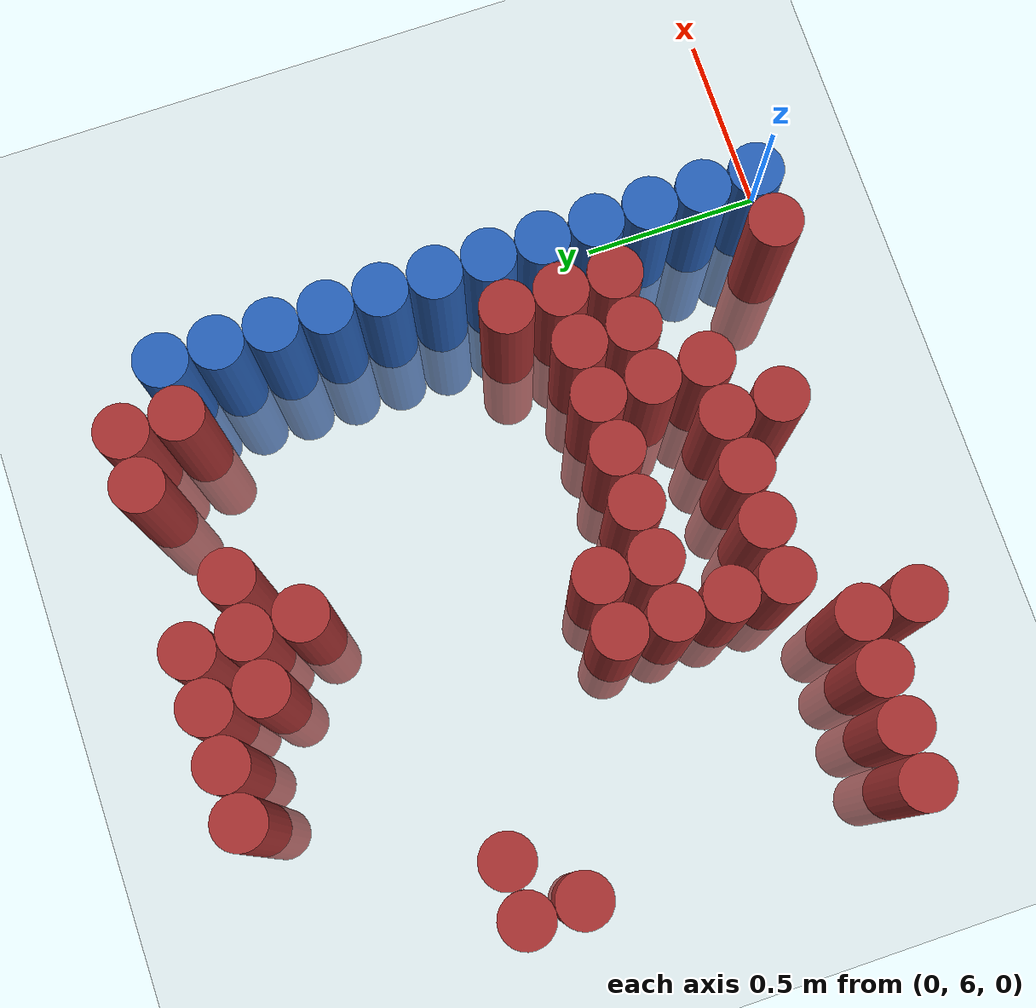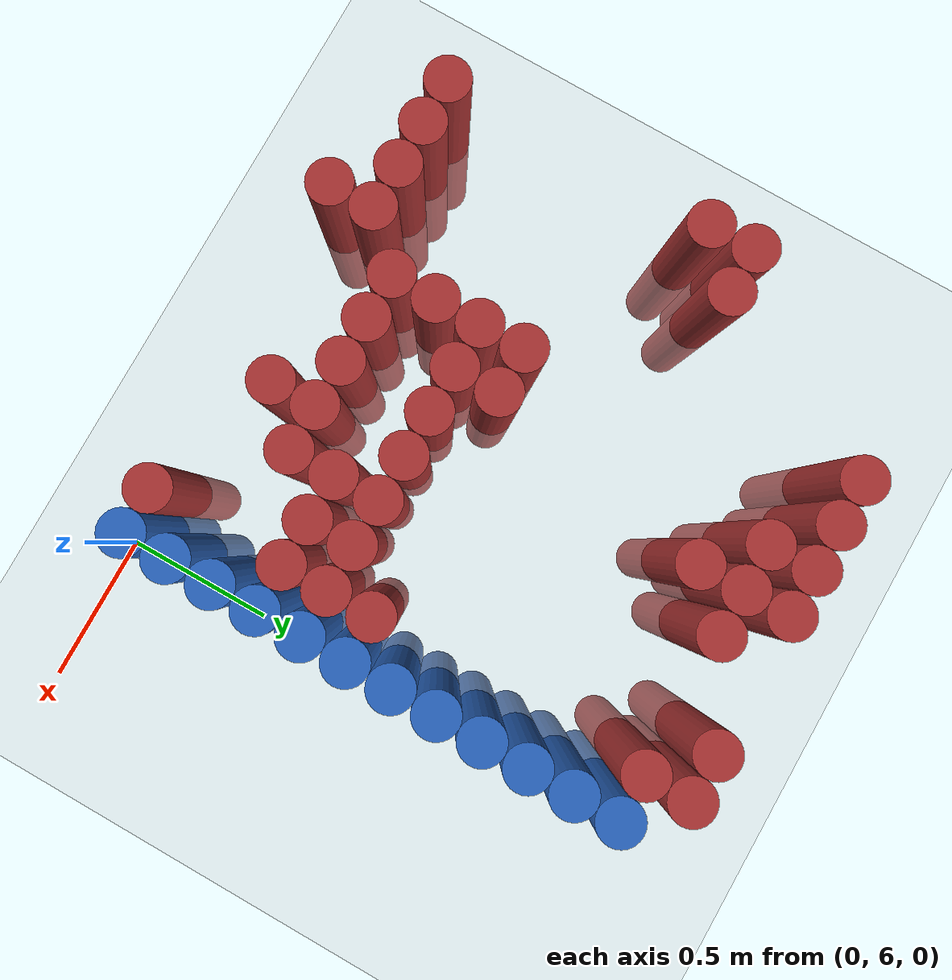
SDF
<sdf version="1.6">
 <world name="default">
  <model name="ground_plane">
   <static>1</static>
   <link name="link">
    <collision name="collision">
     <geometry><plane><normal>0 0 1</normal><size>100 100</size></plane></geometry>
     <surface><friction><ode><mu>100</mu><mu2>50</mu2></ode></friction></surface>
    </collision>
    <visual name="visual">
     <cast_shadows>0</cast_shadows>
     <geometry><plane><normal>0 0 1</normal><size>100 100</size></plane></geometry>
     <material>
      <script><uri>file://media/materials/scripts/gazebo.material</uri><name>Gazebo/Grey</name></script>
     </material>
    </visual>
   </link>
  </model>
  <model name="unit_cylinder_235">
   <static>1</static>
   <pose>-1.725000 6.225000 0.000000 0.000000 0.000000 0.000000</pose>
   <link name="link">
    <inertial>
     <mass>1</mass>
     <inertia><ixx>0.145833</ixx><ixy>0</ixy><ixz>0</ixz><iyy>0.145833</iyy><iyz>0</iyz><izz>0.125</izz></inertia>
    </inertial>
    <collision name="collision">
     <geometry><cylinder><radius>0.075000</radius><length>1</length></cylinder></geometry>
    </collision>
    <visual name="visual">
     <geometry><cylinder><radius>0.075000</radius><length>1</length></cylinder></geometry>
     <material>
      <ambient>0.648000 0.192000 0.192000 1</ambient>
      <diffuse>0.648000 0.192000 0.192000 1</diffuse>
     </material>
     <material>
      <script><name>Gazebo/Grey</name><uri>file://media/materials/scripts/gazebo.material</uri></script>
     </material>
    </visual>
   </link>
  </model>
  <model name="unit_cylinder_236">
   <static>1</static>
   <pose>-1.725000 7.125000 0.000000 0.000000 0.000000 0.000000</pose>
   <link name="link">
    <inertial>
     <mass>1</mass>
     <inertia><ixx>0.145833</ixx><ixy>0</ixy><ixz>0</ixz><iyy>0.145833</iyy><iyz>0</iyz><izz>0.125</izz></inertia>
    </inertial>
    <collision name="collision">
     <geometry><cylinder><radius>0.075000</radius><length>1</length></cylinder></geometry>
    </collision>
    <visual name="visual">
     <geometry><cylinder><radius>0.075000</radius><length>1</length></cylinder></geometry>
     <material>
      <ambient>0.648000 0.192000 0.192000 1</ambient>
      <diffuse>0.648000 0.192000 0.192000 1</diffuse>
     </material>
     <material>
      <script><name>Gazebo/Grey</name><uri>file://media/materials/scripts/gazebo.material</uri></script>
     </material>
    </visual>
   </link>
  </model>
  <model name="unit_cylinder_237">
   <static>1</static>
   <pose>-1.725000 7.275000 0.000000 0.000000 0.000000 0.000000</pose>
   <link name="link">
    <inertial>
     <mass>1</mass>
     <inertia><ixx>0.145833</ixx><ixy>0</ixy><ixz>0</ixz><iyy>0.145833</iyy><iyz>0</iyz><izz>0.125</izz></inertia>
    </inertial>
    <collision name="collision">
     <geometry><cylinder><radius>0.075000</radius><length>1</length></cylinder></geometry>
    </collision>
    <visual name="visual">
     <geometry><cylinder><radius>0.075000</radius><length>1</length></cylinder></geometry>
     <material>
      <ambient>0.648000 0.192000 0.192000 1</ambient>
      <diffuse>0.648000 0.192000 0.192000 1</diffuse>
     </material>
     <material>
      <script><name>Gazebo/Grey</name><uri>file://media/materials/scripts/gazebo.material</uri></script>
     </material>
    </visual>
   </link>
  </model>
  <model name="unit_cylinder_244">
   <static>1</static>
   <pose>-1.575000 6.225000 0.000000 0.000000 0.000000 0.000000</pose>
   <link name="link">
    <inertial>
     <mass>1</mass>
     <inertia><ixx>0.145833</ixx><ixy>0</ixy><ixz>0</ixz><iyy>0.145833</iyy><iyz>0</iyz><izz>0.125</izz></inertia>
    </inertial>
    <collision name="collision">
     <geometry><cylinder><radius>0.075000</radius><length>1</length></cylinder></geometry>
    </collision>
    <visual name="visual">
     <geometry><cylinder><radius>0.075000</radius><length>1</length></cylinder></geometry>
     <material>
      <ambient>0.648000 0.192000 0.192000 1</ambient>
      <diffuse>0.648000 0.192000 0.192000 1</diffuse>
     </material>
     <material>
      <script><name>Gazebo/Grey</name><uri>file://media/materials/scripts/gazebo.material</uri></script>
     </material>
    </visual>
   </link>
  </model>
  <model name="unit_cylinder_245">
   <static>1</static>
   <pose>-1.575000 7.275000 0.000000 0.000000 0.000000 0.000000</pose>
   <link name="link">
    <inertial>
     <mass>1</mass>
     <inertia><ixx>0.145833</ixx><ixy>0</ixy><ixz>0</ixz><iyy>0.145833</iyy><iyz>0</iyz><izz>0.125</izz></inertia>
    </inertial>
    <collision name="collision">
     <geometry><cylinder><radius>0.075000</radius><length>1</length></cylinder></geometry>
    </collision>
    <visual name="visual">
     <geometry><cylinder><radius>0.075000</radius><length>1</length></cylinder></geometry>
     <material>
      <ambient>0.648000 0.192000 0.192000 1</ambient>
      <diffuse>0.648000 0.192000 0.192000 1</diffuse>
     </material>
     <material>
      <script><name>Gazebo/Grey</name><uri>file://media/materials/scripts/gazebo.material</uri></script>
     </material>
    </visual>
   </link>
  </model>
  <model name="unit_cylinder_254">
   <static>1</static>
   <pose>-1.425000 6.225000 0.000000 0.000000 0.000000 0.000000</pose>
   <link name="link">
    <inertial>
     <mass>1</mass>
     <inertia><ixx>0.145833</ixx><ixy>0</ixy><ixz>0</ixz><iyy>0.145833</iyy><iyz>0</iyz><izz>0.125</izz></inertia>
    </inertial>
    <collision name="collision">
     <geometry><cylinder><radius>0.075000</radius><length>1</length></cylinder></geometry>
    </collision>
    <visual name="visual">
     <geometry><cylinder><radius>0.075000</radius><length>1</length></cylinder></geometry>
     <material>
      <ambient>0.648000 0.192000 0.192000 1</ambient>
      <diffuse>0.648000 0.192000 0.192000 1</diffuse>
     </material>
     <material>
      <script><name>Gazebo/Grey</name><uri>file://media/materials/scripts/gazebo.material</uri></script>
     </material>
    </visual>
   </link>
  </model>
  <model name="unit_cylinder_261">
   <static>1</static>
   <pose>-1.275000 6.075000 0.000000 0.000000 0.000000 0.000000</pose>
   <link name="link">
    <inertial>
     <mass>1</mass>
     <inertia><ixx>0.145833</ixx><ixy>0</ixy><ixz>0</ixz><iyy>0.145833</iyy><iyz>0</iyz><izz>0.125</izz></inertia>
    </inertial>
    <collision name="collision">
     <geometry><cylinder><radius>0.075000</radius><length>1</length></cylinder></geometry>
    </collision>
    <visual name="visual">
     <geometry><cylinder><radius>0.075000</radius><length>1</length></cylinder></geometry>
     <material>
      <ambient>0.648000 0.192000 0.192000 1</ambient>
      <diffuse>0.648000 0.192000 0.192000 1</diffuse>
     </material>
     <material>
      <script><name>Gazebo/Grey</name><uri>file://media/materials/scripts/gazebo.material</uri></script>
     </material>
    </visual>
   </link>
  </model>
  <model name="unit_cylinder_262">
   <static>1</static>
   <pose>-1.275000 6.225000 0.000000 0.000000 0.000000 0.000000</pose>
   <link name="link">
    <inertial>
     <mass>1</mass>
     <inertia><ixx>0.145833</ixx><ixy>0</ixy><ixz>0</ixz><iyy>0.145833</iyy><iyz>0</iyz><izz>0.125</izz></inertia>
    </inertial>
    <collision name="collision">
     <geometry><cylinder><radius>0.075000</radius><length>1</length></cylinder></geometry>
    </collision>
    <visual name="visual">
     <geometry><cylinder><radius>0.075000</radius><length>1</length></cylinder></geometry>
     <material>
      <ambient>0.648000 0.192000 0.192000 1</ambient>
      <diffuse>0.648000 0.192000 0.192000 1</diffuse>
     </material>
     <material>
      <script><name>Gazebo/Grey</name><uri>file://media/materials/scripts/gazebo.material</uri></script>
     </material>
    </visual>
   </link>
  </model>
  <model name="unit_cylinder_263">
   <static>1</static>
   <pose>-1.275000 7.875000 0.000000 0.000000 0.000000 0.000000</pose>
   <link name="link">
    <inertial>
     <mass>1</mass>
     <inertia><ixx>0.145833</ixx><ixy>0</ixy><ixz>0</ixz><iyy>0.145833</iyy><iyz>0</iyz><izz>0.125</izz></inertia>
    </inertial>
    <collision name="collision">
     <geometry><cylinder><radius>0.075000</radius><length>1</length></cylinder></geometry>
    </collision>
    <visual name="visual">
     <geometry><cylinder><radius>0.075000</radius><length>1</length></cylinder></geometry>
     <material>
      <ambient>0.648000 0.192000 0.192000 1</ambient>
      <diffuse>0.648000 0.192000 0.192000 1</diffuse>
     </material>
     <material>
      <script><name>Gazebo/Grey</name><uri>file://media/materials/scripts/gazebo.material</uri></script>
     </material>
    </visual>
   </link>
  </model>
  <model name="unit_cylinder_271">
   <static>1</static>
   <pose>-1.125000 6.375000 0.000000 0.000000 0.000000 0.000000</pose>
   <link name="link">
    <inertial>
     <mass>1</mass>
     <inertia><ixx>0.145833</ixx><ixy>0</ixy><ixz>0</ixz><iyy>0.145833</iyy><iyz>0</iyz><izz>0.125</izz></inertia>
    </inertial>
    <collision name="collision">
     <geometry><cylinder><radius>0.075000</radius><length>1</length></cylinder></geometry>
    </collision>
    <visual name="visual">
     <geometry><cylinder><radius>0.075000</radius><length>1</length></cylinder></geometry>
     <material>
      <ambient>0.648000 0.192000 0.192000 1</ambient>
      <diffuse>0.648000 0.192000 0.192000 1</diffuse>
     </material>
     <material>
      <script><name>Gazebo/Grey</name><uri>file://media/materials/scripts/gazebo.material</uri></script>
     </material>
    </visual>
   </link>
  </model>
  <model name="unit_cylinder_272">
   <static>1</static>
   <pose>-1.125000 6.525000 0.000000 0.000000 0.000000 0.000000</pose>
   <link name="link">
    <inertial>
     <mass>1</mass>
     <inertia><ixx>0.145833</ixx><ixy>0</ixy><ixz>0</ixz><iyy>0.145833</iyy><iyz>0</iyz><izz>0.125</izz></inertia>
    </inertial>
    <collision name="collision">
     <geometry><cylinder><radius>0.075000</radius><length>1</length></cylinder></geometry>
    </collision>
    <visual name="visual">
     <geometry><cylinder><radius>0.075000</radius><length>1</length></cylinder></geometry>
     <material>
      <ambient>0.648000 0.192000 0.192000 1</ambient>
      <diffuse>0.648000 0.192000 0.192000 1</diffuse>
     </material>
     <material>
      <script><name>Gazebo/Grey</name><uri>file://media/materials/scripts/gazebo.material</uri></script>
     </material>
    </visual>
   </link>
  </model>
  <model name="unit_cylinder_273">
   <static>1</static>
   <pose>-1.125000 6.675000 0.000000 0.000000 0.000000 0.000000</pose>
   <link name="link">
    <inertial>
     <mass>1</mass>
     <inertia><ixx>0.145833</ixx><ixy>0</ixy><ixz>0</ixz><iyy>0.145833</iyy><iyz>0</iyz><izz>0.125</izz></inertia>
    </inertial>
    <collision name="collision">
     <geometry><cylinder><radius>0.075000</radius><length>1</length></cylinder></geometry>
    </collision>
    <visual name="visual">
     <geometry><cylinder><radius>0.075000</radius><length>1</length></cylinder></geometry>
     <material>
      <ambient>0.648000 0.192000 0.192000 1</ambient>
      <diffuse>0.648000 0.192000 0.192000 1</diffuse>
     </material>
     <material>
      <script><name>Gazebo/Grey</name><uri>file://media/materials/scripts/gazebo.material</uri></script>
     </material>
    </visual>
   </link>
  </model>
  <model name="unit_cylinder_274">
   <static>1</static>
   <pose>-1.125000 6.825000 0.000000 0.000000 0.000000 0.000000</pose>
   <link name="link">
    <inertial>
     <mass>1</mass>
     <inertia><ixx>0.145833</ixx><ixy>0</ixy><ixz>0</ixz><iyy>0.145833</iyy><iyz>0</iyz><izz>0.125</izz></inertia>
    </inertial>
    <collision name="collision">
     <geometry><cylinder><radius>0.075000</radius><length>1</length></cylinder></geometry>
    </collision>
    <visual name="visual">
     <geometry><cylinder><radius>0.075000</radius><length>1</length></cylinder></geometry>
     <material>
      <ambient>0.648000 0.192000 0.192000 1</ambient>
      <diffuse>0.648000 0.192000 0.192000 1</diffuse>
     </material>
     <material>
      <script><name>Gazebo/Grey</name><uri>file://media/materials/scripts/gazebo.material</uri></script>
     </material>
    </visual>
   </link>
  </model>
  <model name="unit_cylinder_275">
   <static>1</static>
   <pose>-1.125000 7.875000 0.000000 0.000000 0.000000 0.000000</pose>
   <link name="link">
    <inertial>
     <mass>1</mass>
     <inertia><ixx>0.145833</ixx><ixy>0</ixy><ixz>0</ixz><iyy>0.145833</iyy><iyz>0</iyz><izz>0.125</izz></inertia>
    </inertial>
    <collision name="collision">
     <geometry><cylinder><radius>0.075000</radius><length>1</length></cylinder></geometry>
    </collision>
    <visual name="visual">
     <geometry><cylinder><radius>0.075000</radius><length>1</length></cylinder></geometry>
     <material>
      <ambient>0.648000 0.192000 0.192000 1</ambient>
      <diffuse>0.648000 0.192000 0.192000 1</diffuse>
     </material>
     <material>
      <script><name>Gazebo/Grey</name><uri>file://media/materials/scripts/gazebo.material</uri></script>
     </material>
    </visual>
   </link>
  </model>
  <model name="unit_cylinder_284">
   <static>1</static>
   <pose>-0.975000 6.375000 0.000000 0.000000 0.000000 0.000000</pose>
   <link name="link">
    <inertial>
     <mass>1</mass>
     <inertia><ixx>0.145833</ixx><ixy>0</ixy><ixz>0</ixz><iyy>0.145833</iyy><iyz>0</iyz><izz>0.125</izz></inertia>
    </inertial>
    <collision name="collision">
     <geometry><cylinder><radius>0.075000</radius><length>1</length></cylinder></geometry>
    </collision>
    <visual name="visual">
     <geometry><cylinder><radius>0.075000</radius><length>1</length></cylinder></geometry>
     <material>
      <ambient>0.648000 0.192000 0.192000 1</ambient>
      <diffuse>0.648000 0.192000 0.192000 1</diffuse>
     </material>
     <material>
      <script><name>Gazebo/Grey</name><uri>file://media/materials/scripts/gazebo.material</uri></script>
     </material>
    </visual>
   </link>
  </model>
  <model name="unit_cylinder_285">
   <static>1</static>
   <pose>-0.975000 6.675000 0.000000 0.000000 0.000000 0.000000</pose>
   <link name="link">
    <inertial>
     <mass>1</mass>
     <inertia><ixx>0.145833</ixx><ixy>0</ixy><ixz>0</ixz><iyy>0.145833</iyy><iyz>0</iyz><izz>0.125</izz></inertia>
    </inertial>
    <collision name="collision">
     <geometry><cylinder><radius>0.075000</radius><length>1</length></cylinder></geometry>
    </collision>
    <visual name="visual">
     <geometry><cylinder><radius>0.075000</radius><length>1</length></cylinder></geometry>
     <material>
      <ambient>0.648000 0.192000 0.192000 1</ambient>
      <diffuse>0.648000 0.192000 0.192000 1</diffuse>
     </material>
     <material>
      <script><name>Gazebo/Grey</name><uri>file://media/materials/scripts/gazebo.material</uri></script>
     </material>
    </visual>
   </link>
  </model>
  <model name="unit_cylinder_286">
   <static>1</static>
   <pose>-0.975000 6.825000 0.000000 0.000000 0.000000 0.000000</pose>
   <link name="link">
    <inertial>
     <mass>1</mass>
     <inertia><ixx>0.145833</ixx><ixy>0</ixy><ixz>0</ixz><iyy>0.145833</iyy><iyz>0</iyz><izz>0.125</izz></inertia>
    </inertial>
    <collision name="collision">
     <geometry><cylinder><radius>0.075000</radius><length>1</length></cylinder></geometry>
    </collision>
    <visual name="visual">
     <geometry><cylinder><radius>0.075000</radius><length>1</length></cylinder></geometry>
     <material>
      <ambient>0.648000 0.192000 0.192000 1</ambient>
      <diffuse>0.648000 0.192000 0.192000 1</diffuse>
     </material>
     <material>
      <script><name>Gazebo/Grey</name><uri>file://media/materials/scripts/gazebo.material</uri></script>
     </material>
    </visual>
   </link>
  </model>
  <model name="unit_cylinder_287">
   <static>1</static>
   <pose>-0.975000 7.725000 0.000000 0.000000 0.000000 0.000000</pose>
   <link name="link">
    <inertial>
     <mass>1</mass>
     <inertia><ixx>0.145833</ixx><ixy>0</ixy><ixz>0</ixz><iyy>0.145833</iyy><iyz>0</iyz><izz>0.125</izz></inertia>
    </inertial>
    <collision name="collision">
     <geometry><cylinder><radius>0.075000</radius><length>1</length></cylinder></geometry>
    </collision>
    <visual name="visual">
     <geometry><cylinder><radius>0.075000</radius><length>1</length></cylinder></geometry>
     <material>
      <ambient>0.648000 0.192000 0.192000 1</ambient>
      <diffuse>0.648000 0.192000 0.192000 1</diffuse>
     </material>
     <material>
      <script><name>Gazebo/Grey</name><uri>file://media/materials/scripts/gazebo.material</uri></script>
     </material>
    </visual>
   </link>
  </model>
  <model name="unit_cylinder_288">
   <static>1</static>
   <pose>-0.975000 7.875000 0.000000 0.000000 0.000000 0.000000</pose>
   <link name="link">
    <inertial>
     <mass>1</mass>
     <inertia><ixx>0.145833</ixx><ixy>0</ixy><ixz>0</ixz><iyy>0.145833</iyy><iyz>0</iyz><izz>0.125</izz></inertia>
    </inertial>
    <collision name="collision">
     <geometry><cylinder><radius>0.075000</radius><length>1</length></cylinder></geometry>
    </collision>
    <visual name="visual">
     <geometry><cylinder><radius>0.075000</radius><length>1</length></cylinder></geometry>
     <material>
      <ambient>0.648000 0.192000 0.192000 1</ambient>
      <diffuse>0.648000 0.192000 0.192000 1</diffuse>
     </material>
     <material>
      <script><name>Gazebo/Grey</name><uri>file://media/materials/scripts/gazebo.material</uri></script>
     </material>
    </visual>
   </link>
  </model>
  <model name="unit_cylinder_294">
   <static>1</static>
   <pose>-0.825000 6.375000 0.000000 0.000000 0.000000 0.000000</pose>
   <link name="link">
    <inertial>
     <mass>1</mass>
     <inertia><ixx>0.145833</ixx><ixy>0</ixy><ixz>0</ixz><iyy>0.145833</iyy><iyz>0</iyz><izz>0.125</izz></inertia>
    </inertial>
    <collision name="collision">
     <geometry><cylinder><radius>0.075000</radius><length>1</length></cylinder></geometry>
    </collision>
    <visual name="visual">
     <geometry><cylinder><radius>0.075000</radius><length>1</length></cylinder></geometry>
     <material>
      <ambient>0.648000 0.192000 0.192000 1</ambient>
      <diffuse>0.648000 0.192000 0.192000 1</diffuse>
     </material>
     <material>
      <script><name>Gazebo/Grey</name><uri>file://media/materials/scripts/gazebo.material</uri></script>
     </material>
    </visual>
   </link>
  </model>
  <model name="unit_cylinder_295">
   <static>1</static>
   <pose>-0.825000 6.675000 0.000000 0.000000 0.000000 0.000000</pose>
   <link name="link">
    <inertial>
     <mass>1</mass>
     <inertia><ixx>0.145833</ixx><ixy>0</ixy><ixz>0</ixz><iyy>0.145833</iyy><iyz>0</iyz><izz>0.125</izz></inertia>
    </inertial>
    <collision name="collision">
     <geometry><cylinder><radius>0.075000</radius><length>1</length></cylinder></geometry>
    </collision>
    <visual name="visual">
     <geometry><cylinder><radius>0.075000</radius><length>1</length></cylinder></geometry>
     <material>
      <ambient>0.648000 0.192000 0.192000 1</ambient>
      <diffuse>0.648000 0.192000 0.192000 1</diffuse>
     </material>
     <material>
      <script><name>Gazebo/Grey</name><uri>file://media/materials/scripts/gazebo.material</uri></script>
     </material>
    </visual>
   </link>
  </model>
  <model name="unit_cylinder_296">
   <static>1</static>
   <pose>-0.825000 7.575000 0.000000 0.000000 0.000000 0.000000</pose>
   <link name="link">
    <inertial>
     <mass>1</mass>
     <inertia><ixx>0.145833</ixx><ixy>0</ixy><ixz>0</ixz><iyy>0.145833</iyy><iyz>0</iyz><izz>0.125</izz></inertia>
    </inertial>
    <collision name="collision">
     <geometry><cylinder><radius>0.075000</radius><length>1</length></cylinder></geometry>
    </collision>
    <visual name="visual">
     <geometry><cylinder><radius>0.075000</radius><length>1</length></cylinder></geometry>
     <material>
      <ambient>0.648000 0.192000 0.192000 1</ambient>
      <diffuse>0.648000 0.192000 0.192000 1</diffuse>
     </material>
     <material>
      <script><name>Gazebo/Grey</name><uri>file://media/materials/scripts/gazebo.material</uri></script>
     </material>
    </visual>
   </link>
  </model>
  <model name="unit_cylinder_297">
   <static>1</static>
   <pose>-0.825000 7.725000 0.000000 0.000000 0.000000 0.000000</pose>
   <link name="link">
    <inertial>
     <mass>1</mass>
     <inertia><ixx>0.145833</ixx><ixy>0</ixy><ixz>0</ixz><iyy>0.145833</iyy><iyz>0</iyz><izz>0.125</izz></inertia>
    </inertial>
    <collision name="collision">
     <geometry><cylinder><radius>0.075000</radius><length>1</length></cylinder></geometry>
    </collision>
    <visual name="visual">
     <geometry><cylinder><radius>0.075000</radius><length>1</length></cylinder></geometry>
     <material>
      <ambient>0.648000 0.192000 0.192000 1</ambient>
      <diffuse>0.648000 0.192000 0.192000 1</diffuse>
     </material>
     <material>
      <script><name>Gazebo/Grey</name><uri>file://media/materials/scripts/gazebo.material</uri></script>
     </material>
    </visual>
   </link>
  </model>
  <model name="unit_cylinder_298">
   <static>1</static>
   <pose>-0.825000 7.875000 0.000000 0.000000 0.000000 0.000000</pose>
   <link name="link">
    <inertial>
     <mass>1</mass>
     <inertia><ixx>0.145833</ixx><ixy>0</ixy><ixz>0</ixz><iyy>0.145833</iyy><iyz>0</iyz><izz>0.125</izz></inertia>
    </inertial>
    <collision name="collision">
     <geometry><cylinder><radius>0.075000</radius><length>1</length></cylinder></geometry>
    </collision>
    <visual name="visual">
     <geometry><cylinder><radius>0.075000</radius><length>1</length></cylinder></geometry>
     <material>
      <ambient>0.648000 0.192000 0.192000 1</ambient>
      <diffuse>0.648000 0.192000 0.192000 1</diffuse>
     </material>
     <material>
      <script><name>Gazebo/Grey</name><uri>file://media/materials/scripts/gazebo.material</uri></script>
     </material>
    </visual>
   </link>
  </model>
  <model name="unit_cylinder_302">
   <static>1</static>
   <pose>-0.675000 6.225000 0.000000 0.000000 0.000000 0.000000</pose>
   <link name="link">
    <inertial>
     <mass>1</mass>
     <inertia><ixx>0.145833</ixx><ixy>0</ixy><ixz>0</ixz><iyy>0.145833</iyy><iyz>0</iyz><izz>0.125</izz></inertia>
    </inertial>
    <collision name="collision">
     <geometry><cylinder><radius>0.075000</radius><length>1</length></cylinder></geometry>
    </collision>
    <visual name="visual">
     <geometry><cylinder><radius>0.075000</radius><length>1</length></cylinder></geometry>
     <material>
      <ambient>0.648000 0.192000 0.192000 1</ambient>
      <diffuse>0.648000 0.192000 0.192000 1</diffuse>
     </material>
     <material>
      <script><name>Gazebo/Grey</name><uri>file://media/materials/scripts/gazebo.material</uri></script>
     </material>
    </visual>
   </link>
  </model>
  <model name="unit_cylinder_303">
   <static>1</static>
   <pose>-0.675000 6.375000 0.000000 0.000000 0.000000 0.000000</pose>
   <link name="link">
    <inertial>
     <mass>1</mass>
     <inertia><ixx>0.145833</ixx><ixy>0</ixy><ixz>0</ixz><iyy>0.145833</iyy><iyz>0</iyz><izz>0.125</izz></inertia>
    </inertial>
    <collision name="collision">
     <geometry><cylinder><radius>0.075000</radius><length>1</length></cylinder></geometry>
    </collision>
    <visual name="visual">
     <geometry><cylinder><radius>0.075000</radius><length>1</length></cylinder></geometry>
     <material>
      <ambient>0.648000 0.192000 0.192000 1</ambient>
      <diffuse>0.648000 0.192000 0.192000 1</diffuse>
     </material>
     <material>
      <script><name>Gazebo/Grey</name><uri>file://media/materials/scripts/gazebo.material</uri></script>
     </material>
    </visual>
   </link>
  </model>
  <model name="unit_cylinder_304">
   <static>1</static>
   <pose>-0.675000 6.675000 0.000000 0.000000 0.000000 0.000000</pose>
   <link name="link">
    <inertial>
     <mass>1</mass>
     <inertia><ixx>0.145833</ixx><ixy>0</ixy><ixz>0</ixz><iyy>0.145833</iyy><iyz>0</iyz><izz>0.125</izz></inertia>
    </inertial>
    <collision name="collision">
     <geometry><cylinder><radius>0.075000</radius><length>1</length></cylinder></geometry>
    </collision>
    <visual name="visual">
     <geometry><cylinder><radius>0.075000</radius><length>1</length></cylinder></geometry>
     <material>
      <ambient>0.648000 0.192000 0.192000 1</ambient>
      <diffuse>0.648000 0.192000 0.192000 1</diffuse>
     </material>
     <material>
      <script><name>Gazebo/Grey</name><uri>file://media/materials/scripts/gazebo.material</uri></script>
     </material>
    </visual>
   </link>
  </model>
  <model name="unit_cylinder_305">
   <static>1</static>
   <pose>-0.675000 7.725000 0.000000 0.000000 0.000000 0.000000</pose>
   <link name="link">
    <inertial>
     <mass>1</mass>
     <inertia><ixx>0.145833</ixx><ixy>0</ixy><ixz>0</ixz><iyy>0.145833</iyy><iyz>0</iyz><izz>0.125</izz></inertia>
    </inertial>
    <collision name="collision">
     <geometry><cylinder><radius>0.075000</radius><length>1</length></cylinder></geometry>
    </collision>
    <visual name="visual">
     <geometry><cylinder><radius>0.075000</radius><length>1</length></cylinder></geometry>
     <material>
      <ambient>0.648000 0.192000 0.192000 1</ambient>
      <diffuse>0.648000 0.192000 0.192000 1</diffuse>
     </material>
     <material>
      <script><name>Gazebo/Grey</name><uri>file://media/materials/scripts/gazebo.material</uri></script>
     </material>
    </visual>
   </link>
  </model>
  <model name="unit_cylinder_310">
   <static>1</static>
   <pose>-0.525000 6.375000 0.000000 0.000000 0.000000 0.000000</pose>
   <link name="link">
    <inertial>
     <mass>1</mass>
     <inertia><ixx>0.145833</ixx><ixy>0</ixy><ixz>0</ixz><iyy>0.145833</iyy><iyz>0</iyz><izz>0.125</izz></inertia>
    </inertial>
    <collision name="collision">
     <geometry><cylinder><radius>0.075000</radius><length>1</length></cylinder></geometry>
    </collision>
    <visual name="visual">
     <geometry><cylinder><radius>0.075000</radius><length>1</length></cylinder></geometry>
     <material>
      <ambient>0.648000 0.192000 0.192000 1</ambient>
      <diffuse>0.648000 0.192000 0.192000 1</diffuse>
     </material>
     <material>
      <script><name>Gazebo/Grey</name><uri>file://media/materials/scripts/gazebo.material</uri></script>
     </material>
    </visual>
   </link>
  </model>
  <model name="unit_cylinder_311">
   <static>1</static>
   <pose>-0.525000 6.525000 0.000000 0.000000 0.000000 0.000000</pose>
   <link name="link">
    <inertial>
     <mass>1</mass>
     <inertia><ixx>0.145833</ixx><ixy>0</ixy><ixz>0</ixz><iyy>0.145833</iyy><iyz>0</iyz><izz>0.125</izz></inertia>
    </inertial>
    <collision name="collision">
     <geometry><cylinder><radius>0.075000</radius><length>1</length></cylinder></geometry>
    </collision>
    <visual name="visual">
     <geometry><cylinder><radius>0.075000</radius><length>1</length></cylinder></geometry>
     <material>
      <ambient>0.648000 0.192000 0.192000 1</ambient>
      <diffuse>0.648000 0.192000 0.192000 1</diffuse>
     </material>
     <material>
      <script><name>Gazebo/Grey</name><uri>file://media/materials/scripts/gazebo.material</uri></script>
     </material>
    </visual>
   </link>
  </model>
  <model name="unit_cylinder_312">
   <static>1</static>
   <pose>-0.525000 6.675000 0.000000 0.000000 0.000000 0.000000</pose>
   <link name="link">
    <inertial>
     <mass>1</mass>
     <inertia><ixx>0.145833</ixx><ixy>0</ixy><ixz>0</ixz><iyy>0.145833</iyy><iyz>0</iyz><izz>0.125</izz></inertia>
    </inertial>
    <collision name="collision">
     <geometry><cylinder><radius>0.075000</radius><length>1</length></cylinder></geometry>
    </collision>
    <visual name="visual">
     <geometry><cylinder><radius>0.075000</radius><length>1</length></cylinder></geometry>
     <material>
      <ambient>0.648000 0.192000 0.192000 1</ambient>
      <diffuse>0.648000 0.192000 0.192000 1</diffuse>
     </material>
     <material>
      <script><name>Gazebo/Grey</name><uri>file://media/materials/scripts/gazebo.material</uri></script>
     </material>
    </visual>
   </link>
  </model>
  <model name="unit_cylinder_320">
   <static>1</static>
   <pose>-0.375000 6.525000 0.000000 0.000000 0.000000 0.000000</pose>
   <link name="link">
    <inertial>
     <mass>1</mass>
     <inertia><ixx>0.145833</ixx><ixy>0</ixy><ixz>0</ixz><iyy>0.145833</iyy><iyz>0</iyz><izz>0.125</izz></inertia>
    </inertial>
    <collision name="collision">
     <geometry><cylinder><radius>0.075000</radius><length>1</length></cylinder></geometry>
    </collision>
    <visual name="visual">
     <geometry><cylinder><radius>0.075000</radius><length>1</length></cylinder></geometry>
     <material>
      <ambient>0.648000 0.192000 0.192000 1</ambient>
      <diffuse>0.648000 0.192000 0.192000 1</diffuse>
     </material>
     <material>
      <script><name>Gazebo/Grey</name><uri>file://media/materials/scripts/gazebo.material</uri></script>
     </material>
    </visual>
   </link>
  </model>
  <model name="unit_cylinder_321">
   <static>1</static>
   <pose>-0.375000 6.675000 0.000000 0.000000 0.000000 0.000000</pose>
   <link name="link">
    <inertial>
     <mass>1</mass>
     <inertia><ixx>0.145833</ixx><ixy>0</ixy><ixz>0</ixz><iyy>0.145833</iyy><iyz>0</iyz><izz>0.125</izz></inertia>
    </inertial>
    <collision name="collision">
     <geometry><cylinder><radius>0.075000</radius><length>1</length></cylinder></geometry>
    </collision>
    <visual name="visual">
     <geometry><cylinder><radius>0.075000</radius><length>1</length></cylinder></geometry>
     <material>
      <ambient>0.648000 0.192000 0.192000 1</ambient>
      <diffuse>0.648000 0.192000 0.192000 1</diffuse>
     </material>
     <material>
      <script><name>Gazebo/Grey</name><uri>file://media/materials/scripts/gazebo.material</uri></script>
     </material>
    </visual>
   </link>
  </model>
  <model name="unit_cylinder_322">
   <static>1</static>
   <pose>-0.375000 7.875000 0.000000 0.000000 0.000000 0.000000</pose>
   <link name="link">
    <inertial>
     <mass>1</mass>
     <inertia><ixx>0.145833</ixx><ixy>0</ixy><ixz>0</ixz><iyy>0.145833</iyy><iyz>0</iyz><izz>0.125</izz></inertia>
    </inertial>
    <collision name="collision">
     <geometry><cylinder><radius>0.075000</radius><length>1</length></cylinder></geometry>
    </collision>
    <visual name="visual">
     <geometry><cylinder><radius>0.075000</radius><length>1</length></cylinder></geometry>
     <material>
      <ambient>0.648000 0.192000 0.192000 1</ambient>
      <diffuse>0.648000 0.192000 0.192000 1</diffuse>
     </material>
     <material>
      <script><name>Gazebo/Grey</name><uri>file://media/materials/scripts/gazebo.material</uri></script>
     </material>
    </visual>
   </link>
  </model>
  <model name="unit_cylinder_328">
   <static>1</static>
   <pose>-0.225000 6.075000 0.000000 0.000000 0.000000 0.000000</pose>
   <link name="link">
    <inertial>
     <mass>1</mass>
     <inertia><ixx>0.145833</ixx><ixy>0</ixy><ixz>0</ixz><iyy>0.145833</iyy><iyz>0</iyz><izz>0.125</izz></inertia>
    </inertial>
    <collision name="collision">
     <geometry><cylinder><radius>0.075000</radius><length>1</length></cylinder></geometry>
    </collision>
    <visual name="visual">
     <geometry><cylinder><radius>0.075000</radius><length>1</length></cylinder></geometry>
     <material>
      <ambient>0.648000 0.192000 0.192000 1</ambient>
      <diffuse>0.648000 0.192000 0.192000 1</diffuse>
     </material>
     <material>
      <script><name>Gazebo/Grey</name><uri>file://media/materials/scripts/gazebo.material</uri></script>
     </material>
    </visual>
   </link>
  </model>
  <model name="unit_cylinder_329">
   <static>1</static>
   <pose>-0.225000 6.525000 0.000000 0.000000 0.000000 0.000000</pose>
   <link name="link">
    <inertial>
     <mass>1</mass>
     <inertia><ixx>0.145833</ixx><ixy>0</ixy><ixz>0</ixz><iyy>0.145833</iyy><iyz>0</iyz><izz>0.125</izz></inertia>
    </inertial>
    <collision name="collision">
     <geometry><cylinder><radius>0.075000</radius><length>1</length></cylinder></geometry>
    </collision>
    <visual name="visual">
     <geometry><cylinder><radius>0.075000</radius><length>1</length></cylinder></geometry>
     <material>
      <ambient>0.648000 0.192000 0.192000 1</ambient>
      <diffuse>0.648000 0.192000 0.192000 1</diffuse>
     </material>
     <material>
      <script><name>Gazebo/Grey</name><uri>file://media/materials/scripts/gazebo.material</uri></script>
     </material>
    </visual>
   </link>
  </model>
  <model name="unit_cylinder_330">
   <static>1</static>
   <pose>-0.225000 6.675000 0.000000 0.000000 0.000000 0.000000</pose>
   <link name="link">
    <inertial>
     <mass>1</mass>
     <inertia><ixx>0.145833</ixx><ixy>0</ixy><ixz>0</ixz><iyy>0.145833</iyy><iyz>0</iyz><izz>0.125</izz></inertia>
    </inertial>
    <collision name="collision">
     <geometry><cylinder><radius>0.075000</radius><length>1</length></cylinder></geometry>
    </collision>
    <visual name="visual">
     <geometry><cylinder><radius>0.075000</radius><length>1</length></cylinder></geometry>
     <material>
      <ambient>0.648000 0.192000 0.192000 1</ambient>
      <diffuse>0.648000 0.192000 0.192000 1</diffuse>
     </material>
     <material>
      <script><name>Gazebo/Grey</name><uri>file://media/materials/scripts/gazebo.material</uri></script>
     </material>
    </visual>
   </link>
  </model>
  <model name="unit_cylinder_331">
   <static>1</static>
   <pose>-0.225000 6.825000 0.000000 0.000000 0.000000 0.000000</pose>
   <link name="link">
    <inertial>
     <mass>1</mass>
     <inertia><ixx>0.145833</ixx><ixy>0</ixy><ixz>0</ixz><iyy>0.145833</iyy><iyz>0</iyz><izz>0.125</izz></inertia>
    </inertial>
    <collision name="collision">
     <geometry><cylinder><radius>0.075000</radius><length>1</length></cylinder></geometry>
    </collision>
    <visual name="visual">
     <geometry><cylinder><radius>0.075000</radius><length>1</length></cylinder></geometry>
     <material>
      <ambient>0.648000 0.192000 0.192000 1</ambient>
      <diffuse>0.648000 0.192000 0.192000 1</diffuse>
     </material>
     <material>
      <script><name>Gazebo/Grey</name><uri>file://media/materials/scripts/gazebo.material</uri></script>
     </material>
    </visual>
   </link>
  </model>
  <model name="unit_cylinder_332">
   <static>1</static>
   <pose>-0.225000 7.725000 0.000000 0.000000 0.000000 0.000000</pose>
   <link name="link">
    <inertial>
     <mass>1</mass>
     <inertia><ixx>0.145833</ixx><ixy>0</ixy><ixz>0</ixz><iyy>0.145833</iyy><iyz>0</iyz><izz>0.125</izz></inertia>
    </inertial>
    <collision name="collision">
     <geometry><cylinder><radius>0.075000</radius><length>1</length></cylinder></geometry>
    </collision>
    <visual name="visual">
     <geometry><cylinder><radius>0.075000</radius><length>1</length></cylinder></geometry>
     <material>
      <ambient>0.648000 0.192000 0.192000 1</ambient>
      <diffuse>0.648000 0.192000 0.192000 1</diffuse>
     </material>
     <material>
      <script><name>Gazebo/Grey</name><uri>file://media/materials/scripts/gazebo.material</uri></script>
     </material>
    </visual>
   </link>
  </model>
  <model name="unit_cylinder_333">
   <static>1</static>
   <pose>-0.225000 7.875000 0.000000 0.000000 0.000000 0.000000</pose>
   <link name="link">
    <inertial>
     <mass>1</mass>
     <inertia><ixx>0.145833</ixx><ixy>0</ixy><ixz>0</ixz><iyy>0.145833</iyy><iyz>0</iyz><izz>0.125</izz></inertia>
    </inertial>
    <collision name="collision">
     <geometry><cylinder><radius>0.075000</radius><length>1</length></cylinder></geometry>
    </collision>
    <visual name="visual">
     <geometry><cylinder><radius>0.075000</radius><length>1</length></cylinder></geometry>
     <material>
      <ambient>0.648000 0.192000 0.192000 1</ambient>
      <diffuse>0.648000 0.192000 0.192000 1</diffuse>
     </material>
     <material>
      <script><name>Gazebo/Grey</name><uri>file://media/materials/scripts/gazebo.material</uri></script>
     </material>
    </visual>
   </link>
  </model>
  <model name="unit_cylinder_342">
   <static>1</static>
   <pose>-0.075000 6.075000 0.000000 0.000000 0.000000 0.000000</pose>
   <link name="link">
    <inertial>
     <mass>1</mass>
     <inertia><ixx>0.145833</ixx><ixy>0</ixy><ixz>0</ixz><iyy>0.145833</iyy><iyz>0</iyz><izz>0.125</izz></inertia>
    </inertial>
    <collision name="collision">
     <geometry><cylinder><radius>0.075000</radius><length>1</length></cylinder></geometry>
    </collision>
    <visual name="visual">
     <geometry><cylinder><radius>0.075000</radius><length>1</length></cylinder></geometry>
     <material>
      <ambient>0.152000 0.379000 0.720000 1</ambient>
      <diffuse>0.152000 0.379000 0.720000 1</diffuse>
     </material>
     <material>
      <script><name>Gazebo/Grey</name><uri>file://media/materials/scripts/gazebo.material</uri></script>
     </material>
    </visual>
   </link>
  </model>
  <model name="unit_cylinder_343">
   <static>1</static>
   <pose>-0.075000 6.225000 0.000000 0.000000 0.000000 0.000000</pose>
   <link name="link">
    <inertial>
     <mass>1</mass>
     <inertia><ixx>0.145833</ixx><ixy>0</ixy><ixz>0</ixz><iyy>0.145833</iyy><iyz>0</iyz><izz>0.125</izz></inertia>
    </inertial>
    <collision name="collision">
     <geometry><cylinder><radius>0.075000</radius><length>1</length></cylinder></geometry>
    </collision>
    <visual name="visual">
     <geometry><cylinder><radius>0.075000</radius><length>1</length></cylinder></geometry>
     <material>
      <ambient>0.152000 0.379000 0.720000 1</ambient>
      <diffuse>0.152000 0.379000 0.720000 1</diffuse>
     </material>
     <material>
      <script><name>Gazebo/Grey</name><uri>file://media/materials/scripts/gazebo.material</uri></script>
     </material>
    </visual>
   </link>
  </model>
  <model name="unit_cylinder_344">
   <static>1</static>
   <pose>-0.075000 6.375000 0.000000 0.000000 0.000000 0.000000</pose>
   <link name="link">
    <inertial>
     <mass>1</mass>
     <inertia><ixx>0.145833</ixx><ixy>0</ixy><ixz>0</ixz><iyy>0.145833</iyy><iyz>0</iyz><izz>0.125</izz></inertia>
    </inertial>
    <collision name="collision">
     <geometry><cylinder><radius>0.075000</radius><length>1</length></cylinder></geometry>
    </collision>
    <visual name="visual">
     <geometry><cylinder><radius>0.075000</radius><length>1</length></cylinder></geometry>
     <material>
      <ambient>0.152000 0.379000 0.720000 1</ambient>
      <diffuse>0.152000 0.379000 0.720000 1</diffuse>
     </material>
     <material>
      <script><name>Gazebo/Grey</name><uri>file://media/materials/scripts/gazebo.material</uri></script>
     </material>
    </visual>
   </link>
  </model>
  <model name="unit_cylinder_345">
   <static>1</static>
   <pose>-0.075000 6.525000 0.000000 0.000000 0.000000 0.000000</pose>
   <link name="link">
    <inertial>
     <mass>1</mass>
     <inertia><ixx>0.145833</ixx><ixy>0</ixy><ixz>0</ixz><iyy>0.145833</iyy><iyz>0</iyz><izz>0.125</izz></inertia>
    </inertial>
    <collision name="collision">
     <geometry><cylinder><radius>0.075000</radius><length>1</length></cylinder></geometry>
    </collision>
    <visual name="visual">
     <geometry><cylinder><radius>0.075000</radius><length>1</length></cylinder></geometry>
     <material>
      <ambient>0.152000 0.379000 0.720000 1</ambient>
      <diffuse>0.152000 0.379000 0.720000 1</diffuse>
     </material>
     <material>
      <script><name>Gazebo/Grey</name><uri>file://media/materials/scripts/gazebo.material</uri></script>
     </material>
    </visual>
   </link>
  </model>
  <model name="unit_cylinder_346">
   <static>1</static>
   <pose>-0.075000 6.675000 0.000000 0.000000 0.000000 0.000000</pose>
   <link name="link">
    <inertial>
     <mass>1</mass>
     <inertia><ixx>0.145833</ixx><ixy>0</ixy><ixz>0</ixz><iyy>0.145833</iyy><iyz>0</iyz><izz>0.125</izz></inertia>
    </inertial>
    <collision name="collision">
     <geometry><cylinder><radius>0.075000</radius><length>1</length></cylinder></geometry>
    </collision>
    <visual name="visual">
     <geometry><cylinder><radius>0.075000</radius><length>1</length></cylinder></geometry>
     <material>
      <ambient>0.152000 0.379000 0.720000 1</ambient>
      <diffuse>0.152000 0.379000 0.720000 1</diffuse>
     </material>
     <material>
      <script><name>Gazebo/Grey</name><uri>file://media/materials/scripts/gazebo.material</uri></script>
     </material>
    </visual>
   </link>
  </model>
  <model name="unit_cylinder_347">
   <static>1</static>
   <pose>-0.075000 6.825000 0.000000 0.000000 0.000000 0.000000</pose>
   <link name="link">
    <inertial>
     <mass>1</mass>
     <inertia><ixx>0.145833</ixx><ixy>0</ixy><ixz>0</ixz><iyy>0.145833</iyy><iyz>0</iyz><izz>0.125</izz></inertia>
    </inertial>
    <collision name="collision">
     <geometry><cylinder><radius>0.075000</radius><length>1</length></cylinder></geometry>
    </collision>
    <visual name="visual">
     <geometry><cylinder><radius>0.075000</radius><length>1</length></cylinder></geometry>
     <material>
      <ambient>0.152000 0.379000 0.720000 1</ambient>
      <diffuse>0.152000 0.379000 0.720000 1</diffuse>
     </material>
     <material>
      <script><name>Gazebo/Grey</name><uri>file://media/materials/scripts/gazebo.material</uri></script>
     </material>
    </visual>
   </link>
  </model>
  <model name="unit_cylinder_348">
   <static>1</static>
   <pose>-0.075000 6.975000 0.000000 0.000000 0.000000 0.000000</pose>
   <link name="link">
    <inertial>
     <mass>1</mass>
     <inertia><ixx>0.145833</ixx><ixy>0</ixy><ixz>0</ixz><iyy>0.145833</iyy><iyz>0</iyz><izz>0.125</izz></inertia>
    </inertial>
    <collision name="collision">
     <geometry><cylinder><radius>0.075000</radius><length>1</length></cylinder></geometry>
    </collision>
    <visual name="visual">
     <geometry><cylinder><radius>0.075000</radius><length>1</length></cylinder></geometry>
     <material>
      <ambient>0.152000 0.379000 0.720000 1</ambient>
      <diffuse>0.152000 0.379000 0.720000 1</diffuse>
     </material>
     <material>
      <script><name>Gazebo/Grey</name><uri>file://media/materials/scripts/gazebo.material</uri></script>
     </material>
    </visual>
   </link>
  </model>
  <model name="unit_cylinder_349">
   <static>1</static>
   <pose>-0.075000 7.125000 0.000000 0.000000 0.000000 0.000000</pose>
   <link name="link">
    <inertial>
     <mass>1</mass>
     <inertia><ixx>0.145833</ixx><ixy>0</ixy><ixz>0</ixz><iyy>0.145833</iyy><iyz>0</iyz><izz>0.125</izz></inertia>
    </inertial>
    <collision name="collision">
     <geometry><cylinder><radius>0.075000</radius><length>1</length></cylinder></geometry>
    </collision>
    <visual name="visual">
     <geometry><cylinder><radius>0.075000</radius><length>1</length></cylinder></geometry>
     <material>
      <ambient>0.152000 0.379000 0.720000 1</ambient>
      <diffuse>0.152000 0.379000 0.720000 1</diffuse>
     </material>
     <material>
      <script><name>Gazebo/Grey</name><uri>file://media/materials/scripts/gazebo.material</uri></script>
     </material>
    </visual>
   </link>
  </model>
  <model name="unit_cylinder_350">
   <static>1</static>
   <pose>-0.075000 7.275000 0.000000 0.000000 0.000000 0.000000</pose>
   <link name="link">
    <inertial>
     <mass>1</mass>
     <inertia><ixx>0.145833</ixx><ixy>0</ixy><ixz>0</ixz><iyy>0.145833</iyy><iyz>0</iyz><izz>0.125</izz></inertia>
    </inertial>
    <collision name="collision">
     <geometry><cylinder><radius>0.075000</radius><length>1</length></cylinder></geometry>
    </collision>
    <visual name="visual">
     <geometry><cylinder><radius>0.075000</radius><length>1</length></cylinder></geometry>
     <material>
      <ambient>0.152000 0.379000 0.720000 1</ambient>
      <diffuse>0.152000 0.379000 0.720000 1</diffuse>
     </material>
     <material>
      <script><name>Gazebo/Grey</name><uri>file://media/materials/scripts/gazebo.material</uri></script>
     </material>
    </visual>
   </link>
  </model>
  <model name="unit_cylinder_351">
   <static>1</static>
   <pose>-0.075000 7.425000 0.000000 0.000000 0.000000 0.000000</pose>
   <link name="link">
    <inertial>
     <mass>1</mass>
     <inertia><ixx>0.145833</ixx><ixy>0</ixy><ixz>0</ixz><iyy>0.145833</iyy><iyz>0</iyz><izz>0.125</izz></inertia>
    </inertial>
    <collision name="collision">
     <geometry><cylinder><radius>0.075000</radius><length>1</length></cylinder></geometry>
    </collision>
    <visual name="visual">
     <geometry><cylinder><radius>0.075000</radius><length>1</length></cylinder></geometry>
     <material>
      <ambient>0.152000 0.379000 0.720000 1</ambient>
      <diffuse>0.152000 0.379000 0.720000 1</diffuse>
     </material>
     <material>
      <script><name>Gazebo/Grey</name><uri>file://media/materials/scripts/gazebo.material</uri></script>
     </material>
    </visual>
   </link>
  </model>
  <model name="unit_cylinder_352">
   <static>1</static>
   <pose>-0.075000 7.575000 0.000000 0.000000 0.000000 0.000000</pose>
   <link name="link">
    <inertial>
     <mass>1</mass>
     <inertia><ixx>0.145833</ixx><ixy>0</ixy><ixz>0</ixz><iyy>0.145833</iyy><iyz>0</iyz><izz>0.125</izz></inertia>
    </inertial>
    <collision name="collision">
     <geometry><cylinder><radius>0.075000</radius><length>1</length></cylinder></geometry>
    </collision>
    <visual name="visual">
     <geometry><cylinder><radius>0.075000</radius><length>1</length></cylinder></geometry>
     <material>
      <ambient>0.152000 0.379000 0.720000 1</ambient>
      <diffuse>0.152000 0.379000 0.720000 1</diffuse>
     </material>
     <material>
      <script><name>Gazebo/Grey</name><uri>file://media/materials/scripts/gazebo.material</uri></script>
     </material>
    </visual>
   </link>
  </model>
  <model name="unit_cylinder_353">
   <static>1</static>
   <pose>-0.075000 7.725000 0.000000 0.000000 0.000000 0.000000</pose>
   <link name="link">
    <inertial>
     <mass>1</mass>
     <inertia><ixx>0.145833</ixx><ixy>0</ixy><ixz>0</ixz><iyy>0.145833</iyy><iyz>0</iyz><izz>0.125</izz></inertia>
    </inertial>
    <collision name="collision">
     <geometry><cylinder><radius>0.075000</radius><length>1</length></cylinder></geometry>
    </collision>
    <visual name="visual">
     <geometry><cylinder><radius>0.075000</radius><length>1</length></cylinder></geometry>
     <material>
      <ambient>0.152000 0.379000 0.720000 1</ambient>
      <diffuse>0.152000 0.379000 0.720000 1</diffuse>
     </material>
     <material>
      <script><name>Gazebo/Grey</name><uri>file://media/materials/scripts/gazebo.material</uri></script>
     </material>
    </visual>
   </link>
  </model>
 </world>
</sdf>
